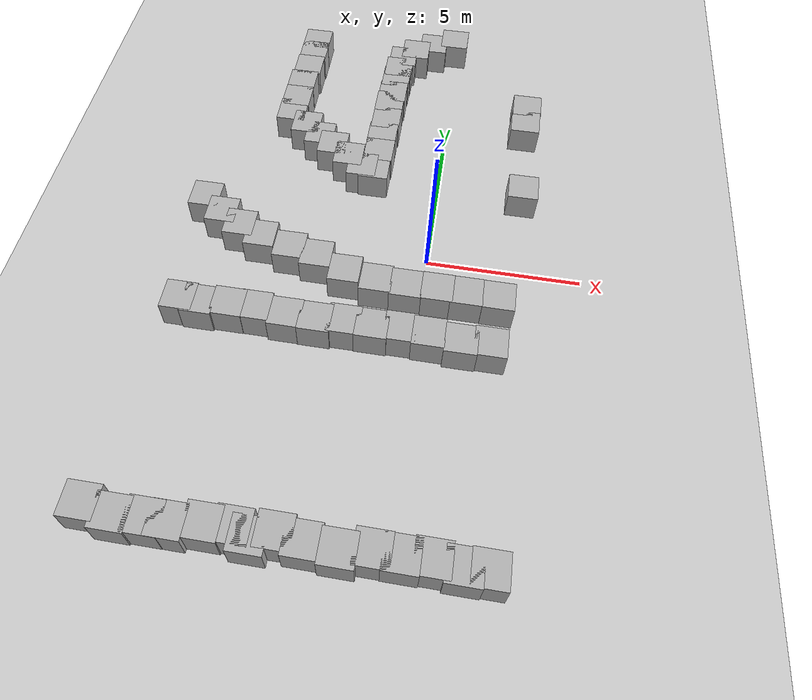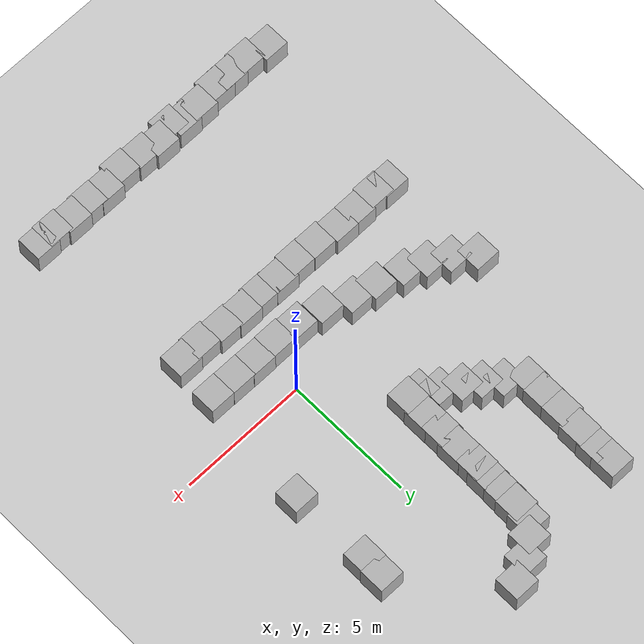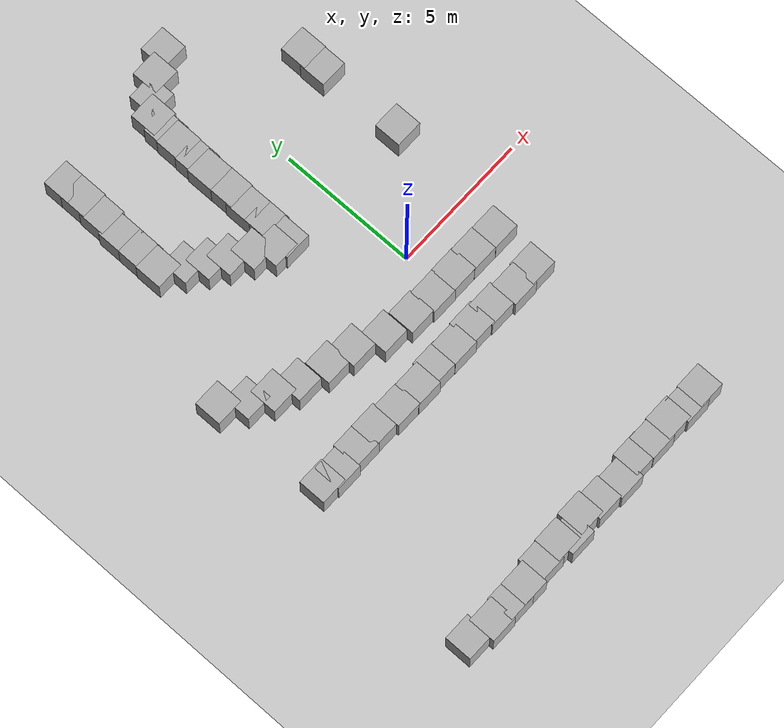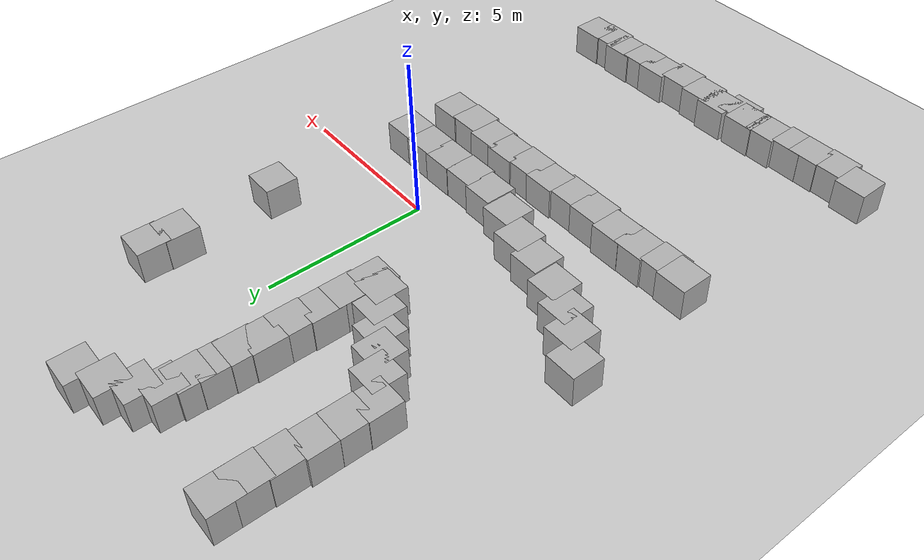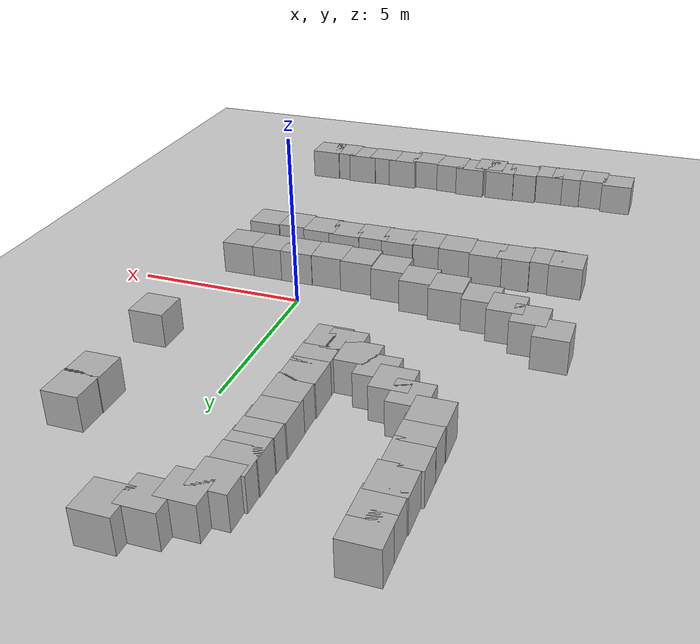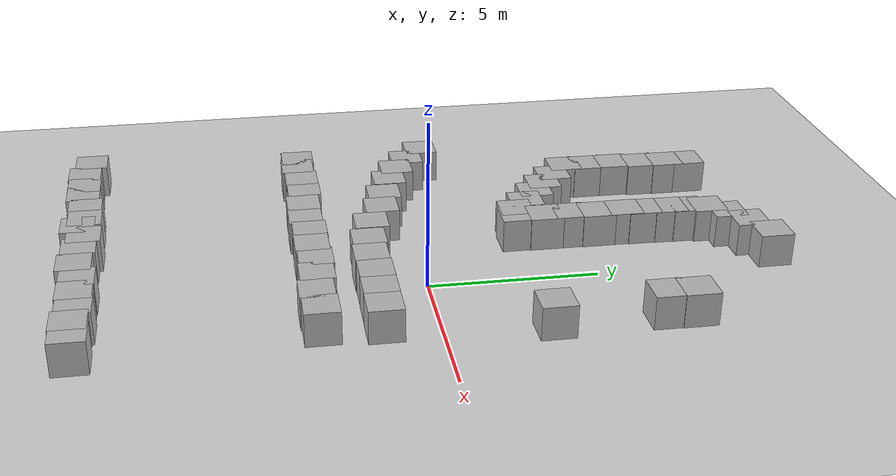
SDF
<sdf version="1.10">
 <world name="empty">
  <model name="ground_plane">
   <static>true</static>
   <link name="link">
    <collision name="collision">
     <geometry><plane><normal>0 0 1</normal><size>100 100</size></plane></geometry>
    </collision>
    <visual name="visual">
     <geometry><plane><normal>0 0 1</normal><size>100 100</size></plane></geometry>
     <material>
      <ambient>0.800000012 0.800000012 0.800000012 1</ambient>
      <diffuse>0.800000012 0.800000012 0.800000012 1</diffuse>
      <specular>0.800000012 0.800000012 0.800000012 1</specular>
     </material>
    </visual>
    <inertial>
     <mass>1</mass>
     <inertia><ixx>1</ixx><ixy>0</ixy><ixz>0</ixz><iyy>1</iyy><iyz>0</iyz><izz>1</izz></inertia>
    </inertial>
   </link>
  </model>
  <model name="box">
   <pose>-0.5103118022990687 -1.5572371090333519 0.5 0 0 0</pose>
   <link name="box_link">
    <inertial>
     <inertia><ixx>0.16666</ixx><ixy>0</ixy><ixz>0</ixz><iyy>0.16666</iyy><iyz>0</iyz><izz>0.16666</izz></inertia>
     <mass>1</mass>
    </inertial>
    <collision name="box_collision"><geometry><box><size>1 1 1</size></box></geometry></collision>
    <visual name="box_visual">
     <geometry><box><size>1 1 1</size></box></geometry>
     <material>
      <ambient>0.300000012 0.300000012 0.300000012 1</ambient>
      <diffuse>0.699999988 0.699999988 0.699999988 1</diffuse>
      <specular>1 1 1 1</specular>
     </material>
    </visual>
   </link>
   <static>false</static>
  </model>
  <model name="box_0">
   <pose>0.465324749371955 -1.5421919059583278 0.5 0 0 0</pose>
   <link name="box_link">
    <inertial>
     <inertia><ixx>0.16666</ixx><ixy>0</ixy><ixz>0</ixz><iyy>0.16666</iyy><iyz>0</iyz><izz>0.16666</izz></inertia>
     <mass>1</mass>
    </inertial>
    <collision name="box_collision"><geometry><box><size>1 1 1</size></box></geometry></collision>
    <visual name="box_visual">
     <geometry><box><size>1 1 1</size></box></geometry>
     <material>
      <ambient>0.300000012 0.300000012 0.300000012 1</ambient>
      <diffuse>0.699999988 0.699999988 0.699999988 1</diffuse>
      <specular>1 1 1 1</specular>
     </material>
    </visual>
   </link>
   <static>false</static>
  </model>
  <model name="box_1">
   <pose>1.3908001001700212 -1.550012316120148 0.5 0 0 0</pose>
   <link name="box_link">
    <inertial>
     <inertia><ixx>0.16666</ixx><ixy>0</ixy><ixz>0</ixz><iyy>0.16666</iyy><iyz>0</iyz><izz>0.16666</izz></inertia>
     <mass>1</mass>
    </inertial>
    <collision name="box_collision"><geometry><box><size>1 1 1</size></box></geometry></collision>
    <visual name="box_visual">
     <geometry><box><size>1 1 1</size></box></geometry>
     <material>
      <ambient>0.300000012 0.300000012 0.300000012 1</ambient>
      <diffuse>0.699999988 0.699999988 0.699999988 1</diffuse>
      <specular>1 1 1 1</specular>
     </material>
    </visual>
   </link>
   <static>false</static>
  </model>
  <model name="box_2">
   <pose>2.3780240748902814 -1.5593532998291624 0.5 0 0 0</pose>
   <link name="box_link">
    <inertial>
     <inertia><ixx>0.16666</ixx><ixy>0</ixy><ixz>0</ixz><iyy>0.16666</iyy><iyz>0</iyz><izz>0.16666</izz></inertia>
     <mass>1</mass>
    </inertial>
    <collision name="box_collision"><geometry><box><size>1 1 1</size></box></geometry></collision>
    <visual name="box_visual">
     <geometry><box><size>1 1 1</size></box></geometry>
     <material>
      <ambient>0.300000012 0.300000012 0.300000012 1</ambient>
      <diffuse>0.699999988 0.699999988 0.699999988 1</diffuse>
      <specular>1 1 1 1</specular>
     </material>
    </visual>
   </link>
   <static>false</static>
  </model>
  <model name="box_8">
   <pose>-1.4691949986557939 -1.5029652012372097 0.5 0 0 0</pose>
   <link name="box_link">
    <inertial>
     <inertia><ixx>0.16666</ixx><ixy>0</ixy><ixz>0</ixz><iyy>0.16666</iyy><iyz>0</iyz><izz>0.16666</izz></inertia>
     <mass>1</mass>
    </inertial>
    <collision name="box_collision"><geometry><box><size>1 1 1</size></box></geometry></collision>
    <visual name="box_visual">
     <geometry><box><size>1 1 1</size></box></geometry>
     <material>
      <ambient>0.300000012 0.300000012 0.300000012 1</ambient>
      <diffuse>0.699999988 0.699999988 0.699999988 1</diffuse>
      <specular>1 1 1 1</specular>
     </material>
    </visual>
   </link>
   <static>false</static>
  </model>
  <model name="box_9">
   <pose>-2.5003136378093527 -1.3086043863022381 0.5 0 0 0</pose>
   <link name="box_link">
    <inertial>
     <inertia><ixx>0.16666</ixx><ixy>0</ixy><ixz>0</ixz><iyy>0.16666</iyy><iyz>0</iyz><izz>0.16666</izz></inertia>
     <mass>1</mass>
    </inertial>
    <collision name="box_collision"><geometry><box><size>1 1 1</size></box></geometry></collision>
    <visual name="box_visual">
     <geometry><box><size>1 1 1</size></box></geometry>
     <material>
      <ambient>0.300000012 0.300000012 0.300000012 1</ambient>
      <diffuse>0.699999988 0.699999988 0.699999988 1</diffuse>
      <specular>1 1 1 1</specular>
     </material>
    </visual>
   </link>
   <static>false</static>
  </model>
  <model name="box_10">
   <pose>-3.4968930083323273 -0.8743732851774022 0.5 0 0 0</pose>
   <link name="box_link">
    <inertial>
     <inertia><ixx>0.16666</ixx><ixy>0</ixy><ixz>0</ixz><iyy>0.16666</iyy><iyz>0</iyz><izz>0.16666</izz></inertia>
     <mass>1</mass>
    </inertial>
    <collision name="box_collision"><geometry><box><size>1 1 1</size></box></geometry></collision>
    <visual name="box_visual">
     <geometry><box><size>1 1 1</size></box></geometry>
     <material>
      <ambient>0.300000012 0.300000012 0.300000012 1</ambient>
      <diffuse>0.699999988 0.699999988 0.699999988 1</diffuse>
      <specular>1 1 1 1</specular>
     </material>
    </visual>
   </link>
   <static>false</static>
  </model>
  <model name="box_11">
   <pose>-4.4232375011744631 -0.67955977234431431 0.5 0 0 0</pose>
   <link name="box_link">
    <inertial>
     <inertia><ixx>0.16666</ixx><ixy>0</ixy><ixz>0</ixz><iyy>0.16666</iyy><iyz>0</iyz><izz>0.16666</izz></inertia>
     <mass>1</mass>
    </inertial>
    <collision name="box_collision"><geometry><box><size>1 1 1</size></box></geometry></collision>
    <visual name="box_visual">
     <geometry><box><size>1 1 1</size></box></geometry>
     <material>
      <ambient>0.300000012 0.300000012 0.300000012 1</ambient>
      <diffuse>0.699999988 0.699999988 0.699999988 1</diffuse>
      <specular>1 1 1 1</specular>
     </material>
    </visual>
   </link>
   <static>false</static>
  </model>
  <model name="box_12">
   <pose>-5.4517876371504554 -0.38332490231765015 0.5 0 0 0</pose>
   <link name="box_link">
    <inertial>
     <inertia><ixx>0.16666</ixx><ixy>0</ixy><ixz>0</ixz><iyy>0.16666</iyy><iyz>0</iyz><izz>0.16666</izz></inertia>
     <mass>1</mass>
    </inertial>
    <collision name="box_collision"><geometry><box><size>1 1 1</size></box></geometry></collision>
    <visual name="box_visual">
     <geometry><box><size>1 1 1</size></box></geometry>
     <material>
      <ambient>0.300000012 0.300000012 0.300000012 1</ambient>
      <diffuse>0.699999988 0.699999988 0.699999988 1</diffuse>
      <specular>1 1 1 1</specular>
     </material>
    </visual>
   </link>
   <static>false</static>
  </model>
  <model name="box_13">
   <pose>-6.2373800277709961 -0.051265798509120941 0.5 0 0 0</pose>
   <link name="box_link">
    <inertial>
     <inertia><ixx>0.16666</ixx><ixy>0</ixy><ixz>0</ixz><iyy>0.16666</iyy><iyz>0</iyz><izz>0.16666</izz></inertia>
     <mass>1</mass>
    </inertial>
    <collision name="box_collision"><geometry><box><size>1 1 1</size></box></geometry></collision>
    <visual name="box_visual">
     <geometry><box><size>1 1 1</size></box></geometry>
     <material>
      <ambient>0.300000012 0.300000012 0.300000012 1</ambient>
      <diffuse>0.699999988 0.699999988 0.699999988 1</diffuse>
      <specular>1 1 1 1</specular>
     </material>
    </visual>
   </link>
   <static>false</static>
  </model>
  <model name="box_14">
   <pose>-6.9554026283552153 0.38368040429650563 0.5 0 0 0</pose>
   <link name="box_link">
    <inertial>
     <inertia><ixx>0.16666</ixx><ixy>0</ixy><ixz>0</ixz><iyy>0.16666</iyy><iyz>0</iyz><izz>0.16666</izz></inertia>
     <mass>1</mass>
    </inertial>
    <collision name="box_collision"><geometry><box><size>1 1 1</size></box></geometry></collision>
    <visual name="box_visual">
     <geometry><box><size>1 1 1</size></box></geometry>
     <material>
      <ambient>0.300000012 0.300000012 0.300000012 1</ambient>
      <diffuse>0.699999988 0.699999988 0.699999988 1</diffuse>
      <specular>1 1 1 1</specular>
     </material>
    </visual>
   </link>
   <static>false</static>
  </model>
  <model name="box_15">
   <pose>-7.6692439723208015 0.95319792340135789 0.5 0 0 0</pose>
   <link name="box_link">
    <inertial>
     <inertia><ixx>0.16666</ixx><ixy>0</ixy><ixz>0</ixz><iyy>0.16666</iyy><iyz>0</iyz><izz>0.16666</izz></inertia>
     <mass>1</mass>
    </inertial>
    <collision name="box_collision"><geometry><box><size>1 1 1</size></box></geometry></collision>
    <visual name="box_visual">
     <geometry><box><size>1 1 1</size></box></geometry>
     <material>
      <ambient>0.300000012 0.300000012 0.300000012 1</ambient>
      <diffuse>0.699999988 0.699999988 0.699999988 1</diffuse>
      <specular>1 1 1 1</specular>
     </material>
    </visual>
   </link>
   <static>false</static>
  </model>
  <model name="box_19_1">
   <pose>2.8898080161827115 2.9913672453019284 0.5 0 0 0</pose>
   <link name="box_link">
    <inertial>
     <inertia><ixx>0.16666</ixx><ixy>0</ixy><ixz>0</ixz><iyy>0.16666</iyy><iyz>0</iyz><izz>0.16666</izz></inertia>
     <mass>1</mass>
    </inertial>
    <collision name="box_collision"><geometry><box><size>1 1 1</size></box></geometry></collision>
    <visual name="box_visual">
     <geometry><box><size>1 1 1</size></box></geometry>
     <material>
      <ambient>0.300000012 0.300000012 0.300000012 1</ambient>
      <diffuse>0.699999988 0.699999988 0.699999988 1</diffuse>
      <specular>1 1 1 1</specular>
     </material>
    </visual>
   </link>
   <static>false</static>
  </model>
  <model name="box_7_4">
   <pose>2.8049931583423278 6.1290741332245302 0.5 0 0 0</pose>
   <link name="box_link">
    <inertial>
     <inertia><ixx>0.16666</ixx><ixy>0</ixy><ixz>0</ixz><iyy>0.16666</iyy><iyz>0</iyz><izz>0.16666</izz></inertia>
     <mass>1</mass>
    </inertial>
    <collision name="box_collision"><geometry><box><size>1 1 1</size></box></geometry></collision>
    <visual name="box_visual">
     <geometry><box><size>1 1 1</size></box></geometry>
     <material>
      <ambient>0.300000012 0.300000012 0.300000012 1</ambient>
      <diffuse>0.699999988 0.699999988 0.699999988 1</diffuse>
      <specular>1 1 1 1</specular>
     </material>
    </visual>
   </link>
   <static>false</static>
  </model>
  <model name="box_7_5">
   <pose>2.8257385187786537 6.9584155599908932 0.5 0 0 0</pose>
   <link name="box_link">
    <inertial>
     <inertia><ixx>0.16666</ixx><ixy>0</ixy><ixz>0</ixz><iyy>0.16666</iyy><iyz>0</iyz><izz>0.16666</izz></inertia>
     <mass>1</mass>
    </inertial>
    <collision name="box_collision"><geometry><box><size>1 1 1</size></box></geometry></collision>
    <visual name="box_visual">
     <geometry><box><size>1 1 1</size></box></geometry>
     <material>
      <ambient>0.300000012 0.300000012 0.300000012 1</ambient>
      <diffuse>0.699999988 0.699999988 0.699999988 1</diffuse>
      <specular>1 1 1 1</specular>
     </material>
    </visual>
   </link>
   <static>false</static>
  </model>
  <model name="box_7_6">
   <pose>-2.689199144929955 3.1326155944008862 0.5 0 0 0</pose>
   <link name="box_link">
    <inertial>
     <inertia><ixx>0.16666</ixx><ixy>0</ixy><ixz>0</ixz><iyy>0.16666</iyy><iyz>0</iyz><izz>0.16666</izz></inertia>
     <mass>1</mass>
    </inertial>
    <collision name="box_collision"><geometry><box><size>1 1 1</size></box></geometry></collision>
    <visual name="box_visual">
     <geometry><box><size>1 1 1</size></box></geometry>
     <material>
      <ambient>0.300000012 0.300000012 0.300000012 1</ambient>
      <diffuse>0.699999988 0.699999988 0.699999988 1</diffuse>
      <specular>1 1 1 1</specular>
     </material>
    </visual>
   </link>
   <static>false</static>
  </model>
  <model name="box_7_7">
   <pose>-3.2342162004722481 3.5629760571669751 0.5 0 0 0</pose>
   <link name="box_link">
    <inertial>
     <inertia><ixx>0.16666</ixx><ixy>0</ixy><ixz>0</ixz><iyy>0.16666</iyy><iyz>0</iyz><izz>0.16666</izz></inertia>
     <mass>1</mass>
    </inertial>
    <collision name="box_collision"><geometry><box><size>1 1 1</size></box></geometry></collision>
    <visual name="box_visual">
     <geometry><box><size>1 1 1</size></box></geometry>
     <material>
      <ambient>0.300000012 0.300000012 0.300000012 1</ambient>
      <diffuse>0.699999988 0.699999988 0.699999988 1</diffuse>
      <specular>1 1 1 1</specular>
     </material>
    </visual>
   </link>
   <static>false</static>
  </model>
  <model name="box_7_8">
   <pose>-3.8811139416638776 3.9923740787203537 0.5 0 0 0</pose>
   <link name="box_link">
    <inertial>
     <inertia><ixx>0.16666</ixx><ixy>0</ixy><ixz>0</ixz><iyy>0.16666</iyy><iyz>0</iyz><izz>0.16666</izz></inertia>
     <mass>1</mass>
    </inertial>
    <collision name="box_collision"><geometry><box><size>1 1 1</size></box></geometry></collision>
    <visual name="box_visual">
     <geometry><box><size>1 1 1</size></box></geometry>
     <material>
      <ambient>0.300000012 0.300000012 0.300000012 1</ambient>
      <diffuse>0.699999988 0.699999988 0.699999988 1</diffuse>
      <specular>1 1 1 1</specular>
     </material>
    </visual>
   </link>
   <static>false</static>
  </model>
  <model name="box_7_9">
   <pose>-4.4240135839997397 4.3878270713158063 0.5 0 0 0</pose>
   <link name="box_link">
    <inertial>
     <inertia><ixx>0.16666</ixx><ixy>0</ixy><ixz>0</ixz><iyy>0.16666</iyy><iyz>0</iyz><izz>0.16666</izz></inertia>
     <mass>1</mass>
    </inertial>
    <collision name="box_collision"><geometry><box><size>1 1 1</size></box></geometry></collision>
    <visual name="box_visual">
     <geometry><box><size>1 1 1</size></box></geometry>
     <material>
      <ambient>0.300000012 0.300000012 0.300000012 1</ambient>
      <diffuse>0.699999988 0.699999988 0.699999988 1</diffuse>
      <specular>1 1 1 1</specular>
     </material>
    </visual>
   </link>
   <static>false</static>
  </model>
  <model name="box_7_10">
   <pose>-5.0003705507495102 4.8492179712719894 0.5 0 0 0</pose>
   <link name="box_link">
    <inertial>
     <inertia><ixx>0.16666</ixx><ixy>0</ixy><ixz>0</ixz><iyy>0.16666</iyy><iyz>0</iyz><izz>0.16666</izz></inertia>
     <mass>1</mass>
    </inertial>
    <collision name="box_collision"><geometry><box><size>1 1 1</size></box></geometry></collision>
    <visual name="box_visual">
     <geometry><box><size>1 1 1</size></box></geometry>
     <material>
      <ambient>0.300000012 0.300000012 0.300000012 1</ambient>
      <diffuse>0.699999988 0.699999988 0.699999988 1</diffuse>
      <specular>1 1 1 1</specular>
     </material>
    </visual>
   </link>
   <static>false</static>
  </model>
  <model name="box_7_11">
   <pose>-5.6428586157867642 5.3753450057465422 0.5 0 0 0</pose>
   <link name="box_link">
    <inertial>
     <inertia><ixx>0.16666</ixx><ixy>0</ixy><ixz>0</ixz><iyy>0.16666</iyy><iyz>0</iyz><izz>0.16666</izz></inertia>
     <mass>1</mass>
    </inertial>
    <collision name="box_collision"><geometry><box><size>1 1 1</size></box></geometry></collision>
    <visual name="box_visual">
     <geometry><box><size>1 1 1</size></box></geometry>
     <material>
      <ambient>0.300000012 0.300000012 0.300000012 1</ambient>
      <diffuse>0.699999988 0.699999988 0.699999988 1</diffuse>
      <specular>1 1 1 1</specular>
     </material>
    </visual>
   </link>
   <static>false</static>
  </model>
  <model name="box_7_13">
   <pose>-2.247492571055612 3.0708243085432922 0.5 0 0 0</pose>
   <link name="box_link">
    <inertial>
     <inertia><ixx>0.16666</ixx><ixy>0</ixy><ixz>0</ixz><iyy>0.16666</iyy><iyz>0</iyz><izz>0.16666</izz></inertia>
     <mass>1</mass>
    </inertial>
    <collision name="box_collision"><geometry><box><size>1 1 1</size></box></geometry></collision>
    <visual name="box_visual">
     <geometry><box><size>1 1 1</size></box></geometry>
     <material>
      <ambient>0.300000012 0.300000012 0.300000012 1</ambient>
      <diffuse>0.699999988 0.699999988 0.699999988 1</diffuse>
      <specular>1 1 1 1</specular>
     </material>
    </visual>
   </link>
   <static>false</static>
  </model>
  <model name="box_7_14">
   <pose>-2.2174684531073106 3.9099137922750673 0.5 0 0 0</pose>
   <link name="box_link">
    <inertial>
     <inertia><ixx>0.16666</ixx><ixy>0</ixy><ixz>0</ixz><iyy>0.16666</iyy><iyz>0</iyz><izz>0.16666</izz></inertia>
     <mass>1</mass>
    </inertial>
    <collision name="box_collision"><geometry><box><size>1 1 1</size></box></geometry></collision>
    <visual name="box_visual">
     <geometry><box><size>1 1 1</size></box></geometry>
     <material>
      <ambient>0.300000012 0.300000012 0.300000012 1</ambient>
      <diffuse>0.699999988 0.699999988 0.699999988 1</diffuse>
      <specular>1 1 1 1</specular>
     </material>
    </visual>
   </link>
   <static>false</static>
  </model>
  <model name="box_7_15">
   <pose>-2.2212075273248009 4.7112945095395569 0.5 0 0 0</pose>
   <link name="box_link">
    <inertial>
     <inertia><ixx>0.16666</ixx><ixy>0</ixy><ixz>0</ixz><iyy>0.16666</iyy><iyz>0</iyz><izz>0.16666</izz></inertia>
     <mass>1</mass>
    </inertial>
    <collision name="box_collision"><geometry><box><size>1 1 1</size></box></geometry></collision>
    <visual name="box_visual">
     <geometry><box><size>1 1 1</size></box></geometry>
     <material>
      <ambient>0.300000012 0.300000012 0.300000012 1</ambient>
      <diffuse>0.699999988 0.699999988 0.699999988 1</diffuse>
      <specular>1 1 1 1</specular>
     </material>
    </visual>
   </link>
   <static>false</static>
  </model>
  <model name="box_7_16">
   <pose>-2.1911942184538011 5.509672067998193 0.5 0 0 0</pose>
   <link name="box_link">
    <inertial>
     <inertia><ixx>0.16666</ixx><ixy>0</ixy><ixz>0</ixz><iyy>0.16666</iyy><iyz>0</iyz><izz>0.16666</izz></inertia>
     <mass>1</mass>
    </inertial>
    <collision name="box_collision"><geometry><box><size>1 1 1</size></box></geometry></collision>
    <visual name="box_visual">
     <geometry><box><size>1 1 1</size></box></geometry>
     <material>
      <ambient>0.300000012 0.300000012 0.300000012 1</ambient>
      <diffuse>0.699999988 0.699999988 0.699999988 1</diffuse>
      <specular>1 1 1 1</specular>
     </material>
    </visual>
   </link>
   <static>false</static>
  </model>
  <model name="box_7_17">
   <pose>-2.1961464871621459 6.3748183856237741 0.5 0 0 0</pose>
   <link name="box_link">
    <inertial>
     <inertia><ixx>0.16666</ixx><ixy>0</ixy><ixz>0</ixz><iyy>0.16666</iyy><iyz>0</iyz><izz>0.16666</izz></inertia>
     <mass>1</mass>
    </inertial>
    <collision name="box_collision"><geometry><box><size>1 1 1</size></box></geometry></collision>
    <visual name="box_visual">
     <geometry><box><size>1 1 1</size></box></geometry>
     <material>
      <ambient>0.300000012 0.300000012 0.300000012 1</ambient>
      <diffuse>0.699999988 0.699999988 0.699999988 1</diffuse>
      <specular>1 1 1 1</specular>
     </material>
    </visual>
   </link>
   <static>false</static>
  </model>
  <model name="box_7_18">
   <pose>-2.1655441861876401 6.9378981576131942 0.5 0 0 0</pose>
   <link name="box_link">
    <inertial>
     <inertia><ixx>0.16666</ixx><ixy>0</ixy><ixz>0</ixz><iyy>0.16666</iyy><iyz>0</iyz><izz>0.16666</izz></inertia>
     <mass>1</mass>
    </inertial>
    <collision name="box_collision"><geometry><box><size>1 1 1</size></box></geometry></collision>
    <visual name="box_visual">
     <geometry><box><size>1 1 1</size></box></geometry>
     <material>
      <ambient>0.300000012 0.300000012 0.300000012 1</ambient>
      <diffuse>0.699999988 0.699999988 0.699999988 1</diffuse>
      <specular>1 1 1 1</specular>
     </material>
    </visual>
   </link>
   <static>false</static>
  </model>
  <model name="box_7_12">
   <pose>-5.6238256660328183 6.139233918680401 0.5 0 0 0</pose>
   <link name="box_link">
    <inertial>
     <inertia><ixx>0.16666</ixx><ixy>0</ixy><ixz>0</ixz><iyy>0.16666</iyy><iyz>0</iyz><izz>0.16666</izz></inertia>
     <mass>1</mass>
    </inertial>
    <collision name="box_collision"><geometry><box><size>1 1 1</size></box></geometry></collision>
    <visual name="box_visual">
     <geometry><box><size>1 1 1</size></box></geometry>
     <material>
      <ambient>0.300000012 0.300000012 0.300000012 1</ambient>
      <diffuse>0.699999988 0.699999988 0.699999988 1</diffuse>
      <specular>1 1 1 1</specular>
     </material>
    </visual>
   </link>
   <static>false</static>
  </model>
  <model name="box_7_24">
   <pose>-5.6183297165655244 6.9989075408099204 0.5 0 0 0</pose>
   <link name="box_link">
    <inertial>
     <inertia><ixx>0.16666</ixx><ixy>0</ixy><ixz>0</ixz><iyy>0.16666</iyy><iyz>0</iyz><izz>0.16666</izz></inertia>
     <mass>1</mass>
    </inertial>
    <collision name="box_collision"><geometry><box><size>1 1 1</size></box></geometry></collision>
    <visual name="box_visual">
     <geometry><box><size>1 1 1</size></box></geometry>
     <material>
      <ambient>0.300000012 0.300000012 0.300000012 1</ambient>
      <diffuse>0.699999988 0.699999988 0.699999988 1</diffuse>
      <specular>1 1 1 1</specular>
     </material>
    </visual>
   </link>
   <static>false</static>
  </model>
  <model name="box_7_25">
   <pose>-5.5452974438639515 7.8973598493308446 0.5 0 0 0</pose>
   <link name="box_link">
    <inertial>
     <inertia><ixx>0.16666</ixx><ixy>0</ixy><ixz>0</ixz><iyy>0.16666</iyy><iyz>0</iyz><izz>0.16666</izz></inertia>
     <mass>1</mass>
    </inertial>
    <collision name="box_collision"><geometry><box><size>1 1 1</size></box></geometry></collision>
    <visual name="box_visual">
     <geometry><box><size>1 1 1</size></box></geometry>
     <material>
      <ambient>0.300000012 0.300000012 0.300000012 1</ambient>
      <diffuse>0.699999988 0.699999988 0.699999988 1</diffuse>
      <specular>1 1 1 1</specular>
     </material>
    </visual>
   </link>
   <static>false</static>
  </model>
  <model name="box_7_28">
   <pose>-5.5166667334966446 8.7272410631868169 0.5 0 0 0</pose>
   <link name="box_link">
    <inertial>
     <inertia><ixx>0.16666</ixx><ixy>0</ixy><ixz>0</ixz><iyy>0.16666</iyy><iyz>0</iyz><izz>0.16666</izz></inertia>
     <mass>1</mass>
    </inertial>
    <collision name="box_collision"><geometry><box><size>1 1 1</size></box></geometry></collision>
    <visual name="box_visual">
     <geometry><box><size>1 1 1</size></box></geometry>
     <material>
      <ambient>0.300000012 0.300000012 0.300000012 1</ambient>
      <diffuse>0.699999988 0.699999988 0.699999988 1</diffuse>
      <specular>1 1 1 1</specular>
     </material>
    </visual>
   </link>
   <static>false</static>
  </model>
  <model name="box_7_32">
   <pose>-5.5160406983343808 9.4319575808010576 0.5 0 0 0</pose>
   <link name="box_link">
    <inertial>
     <inertia><ixx>0.16666</ixx><ixy>0</ixy><ixz>0</ixz><iyy>0.16666</iyy><iyz>0</iyz><izz>0.16666</izz></inertia>
     <mass>1</mass>
    </inertial>
    <collision name="box_collision"><geometry><box><size>1 1 1</size></box></geometry></collision>
    <visual name="box_visual">
     <geometry><box><size>1 1 1</size></box></geometry>
     <material>
      <ambient>0.300000012 0.300000012 0.300000012 1</ambient>
      <diffuse>0.699999988 0.699999988 0.699999988 1</diffuse>
      <specular>1 1 1 1</specular>
     </material>
    </visual>
   </link>
   <static>false</static>
  </model>
  <model name="box_7_52">
   <pose>-0.1640075415727269 10.270951943889415 0.5 0 0 0</pose>
   <link name="box_link">
    <inertial>
     <inertia><ixx>0.16666</ixx><ixy>0</ixy><ixz>0</ixz><iyy>0.16666</iyy><iyz>0</iyz><izz>0.16666</izz></inertia>
     <mass>1</mass>
    </inertial>
    <collision name="box_collision"><geometry><box><size>1 1 1</size></box></geometry></collision>
    <visual name="box_visual">
     <geometry><box><size>1 1 1</size></box></geometry>
     <material>
      <ambient>0.300000012 0.300000012 0.300000012 1</ambient>
      <diffuse>0.699999988 0.699999988 0.699999988 1</diffuse>
      <specular>1 1 1 1</specular>
     </material>
    </visual>
   </link>
   <static>false</static>
  </model>
  <model name="box_7_53">
   <pose>-0.95454141975403151 9.8797563652505449 0.5 0 0 0</pose>
   <link name="box_link">
    <inertial>
     <inertia><ixx>0.16666</ixx><ixy>0</ixy><ixz>0</ixz><iyy>0.16666</iyy><iyz>0</iyz><izz>0.16666</izz></inertia>
     <mass>1</mass>
    </inertial>
    <collision name="box_collision"><geometry><box><size>1 1 1</size></box></geometry></collision>
    <visual name="box_visual">
     <geometry><box><size>1 1 1</size></box></geometry>
     <material>
      <ambient>0.300000012 0.300000012 0.300000012 1</ambient>
      <diffuse>0.699999988 0.699999988 0.699999988 1</diffuse>
      <specular>1 1 1 1</specular>
     </material>
    </visual>
   </link>
   <static>false</static>
  </model>
  <model name="box_7_54">
   <pose>-1.5979977493690229 9.4258053471603169 0.5 0 0 0</pose>
   <link name="box_link">
    <inertial>
     <inertia><ixx>0.16666</ixx><ixy>0</ixy><ixz>0</ixz><iyy>0.16666</iyy><iyz>0</iyz><izz>0.16666</izz></inertia>
     <mass>1</mass>
    </inertial>
    <collision name="box_collision"><geometry><box><size>1 1 1</size></box></geometry></collision>
    <visual name="box_visual">
     <geometry><box><size>1 1 1</size></box></geometry>
     <material>
      <ambient>0.300000012 0.300000012 0.300000012 1</ambient>
      <diffuse>0.699999988 0.699999988 0.699999988 1</diffuse>
      <specular>1 1 1 1</specular>
     </material>
    </visual>
   </link>
   <static>false</static>
  </model>
  <model name="box_7_55">
   <pose>-2.0366075326427486 8.9445663822618222 0.5 0 0 0</pose>
   <link name="box_link">
    <inertial>
     <inertia><ixx>0.16666</ixx><ixy>0</ixy><ixz>0</ixz><iyy>0.16666</iyy><iyz>0</iyz><izz>0.16666</izz></inertia>
     <mass>1</mass>
    </inertial>
    <collision name="box_collision"><geometry><box><size>1 1 1</size></box></geometry></collision>
    <visual name="box_visual">
     <geometry><box><size>1 1 1</size></box></geometry>
     <material>
      <ambient>0.300000012 0.300000012 0.300000012 1</ambient>
      <diffuse>0.699999988 0.699999988 0.699999988 1</diffuse>
      <specular>1 1 1 1</specular>
     </material>
    </visual>
   </link>
   <static>false</static>
  </model>
  <model name="box_7_56">
   <pose>-2.119408750549006 8.3128059263454119 0.5 0 0 0</pose>
   <link name="box_link">
    <inertial>
     <inertia><ixx>0.16666</ixx><ixy>0</ixy><ixz>0</ixz><iyy>0.16666</iyy><iyz>0</iyz><izz>0.16666</izz></inertia>
     <mass>1</mass>
    </inertial>
    <collision name="box_collision"><geometry><box><size>1 1 1</size></box></geometry></collision>
    <visual name="box_visual">
     <geometry><box><size>1 1 1</size></box></geometry>
     <material>
      <ambient>0.300000012 0.300000012 0.300000012 1</ambient>
      <diffuse>0.699999988 0.699999988 0.699999988 1</diffuse>
      <specular>1 1 1 1</specular>
     </material>
    </visual>
   </link>
   <static>false</static>
  </model>
  <model name="box_7_57">
   <pose>-2.1432211689885223 7.7480663476487086 0.5 0 0 0</pose>
   <link name="box_link">
    <inertial>
     <inertia><ixx>0.16666</ixx><ixy>0</ixy><ixz>0</ixz><iyy>0.16666</iyy><iyz>0</iyz><izz>0.16666</izz></inertia>
     <mass>1</mass>
    </inertial>
    <collision name="box_collision"><geometry><box><size>1 1 1</size></box></geometry></collision>
    <visual name="box_visual">
     <geometry><box><size>1 1 1</size></box></geometry>
     <material>
      <ambient>0.300000012 0.300000012 0.300000012 1</ambient>
      <diffuse>0.699999988 0.699999988 0.699999988 1</diffuse>
      <specular>1 1 1 1</specular>
     </material>
    </visual>
   </link>
   <static>false</static>
  </model>
  <model name="box_7_265">
   <pose>-8.0566517273611815 -9.7625969231317171 0.5 0 0 0</pose>
   <link name="box_link">
    <inertial>
     <inertia><ixx>0.16666</ixx><ixy>0</ixy><ixz>0</ixz><iyy>0.16666</iyy><iyz>0</iyz><izz>0.16666</izz></inertia>
     <mass>1</mass>
    </inertial>
    <collision name="box_collision"><geometry><box><size>1 1 1</size></box></geometry></collision>
    <visual name="box_visual">
     <geometry><box><size>1 1 1</size></box></geometry>
     <material>
      <ambient>0.300000012 0.300000012 0.300000012 1</ambient>
      <diffuse>0.699999988 0.699999988 0.699999988 1</diffuse>
      <specular>1 1 1 1</specular>
     </material>
    </visual>
   </link>
   <static>false</static>
  </model>
  <model name="box_7_266">
   <pose>-7.3818795012114071 -3.1413122060789016 0.5 0 0 0</pose>
   <link name="box_link">
    <inertial>
     <inertia><ixx>0.16666</ixx><ixy>0</ixy><ixz>0</ixz><iyy>0.16666</iyy><iyz>0</iyz><izz>0.16666</izz></inertia>
     <mass>1</mass>
    </inertial>
    <collision name="box_collision"><geometry><box><size>1 1 1</size></box></geometry></collision>
    <visual name="box_visual">
     <geometry><box><size>1 1 1</size></box></geometry>
     <material>
      <ambient>0.300000012 0.300000012 0.300000012 1</ambient>
      <diffuse>0.699999988 0.699999988 0.699999988 1</diffuse>
      <specular>1 1 1 1</specular>
     </material>
    </visual>
   </link>
   <static>false</static>
  </model>
  <model name="box_7_267">
   <pose>-6.7458425478760287 -3.184090195596216 0.5 0 0 0</pose>
   <link name="box_link">
    <inertial>
     <inertia><ixx>0.16666</ixx><ixy>0</ixy><ixz>0</ixz><iyy>0.16666</iyy><iyz>0</iyz><izz>0.16666</izz></inertia>
     <mass>1</mass>
    </inertial>
    <collision name="box_collision"><geometry><box><size>1 1 1</size></box></geometry></collision>
    <visual name="box_visual">
     <geometry><box><size>1 1 1</size></box></geometry>
     <material>
      <ambient>0.300000012 0.300000012 0.300000012 1</ambient>
      <diffuse>0.699999988 0.699999988 0.699999988 1</diffuse>
      <specular>1 1 1 1</specular>
     </material>
    </visual>
   </link>
   <static>false</static>
  </model>
  <model name="box_7_268">
   <pose>-5.8193823708150809 -3.1243620616047361 0.5 0 0 0</pose>
   <link name="box_link">
    <inertial>
     <inertia><ixx>0.16666</ixx><ixy>0</ixy><ixz>0</ixz><iyy>0.16666</iyy><iyz>0</iyz><izz>0.16666</izz></inertia>
     <mass>1</mass>
    </inertial>
    <collision name="box_collision"><geometry><box><size>1 1 1</size></box></geometry></collision>
    <visual name="box_visual">
     <geometry><box><size>1 1 1</size></box></geometry>
     <material>
      <ambient>0.300000012 0.300000012 0.300000012 1</ambient>
      <diffuse>0.699999988 0.699999988 0.699999988 1</diffuse>
      <specular>1 1 1 1</specular>
     </material>
    </visual>
   </link>
   <static>false</static>
  </model>
  <model name="box_7_269">
   <pose>-4.9865195790542121 -3.1153947225578174 0.5 0 0 0</pose>
   <link name="box_link">
    <inertial>
     <inertia><ixx>0.16666</ixx><ixy>0</ixy><ixz>0</ixz><iyy>0.16666</iyy><iyz>0</iyz><izz>0.16666</izz></inertia>
     <mass>1</mass>
    </inertial>
    <collision name="box_collision"><geometry><box><size>1 1 1</size></box></geometry></collision>
    <visual name="box_visual">
     <geometry><box><size>1 1 1</size></box></geometry>
     <material>
      <ambient>0.300000012 0.300000012 0.300000012 1</ambient>
      <diffuse>0.699999988 0.699999988 0.699999988 1</diffuse>
      <specular>1 1 1 1</specular>
     </material>
    </visual>
   </link>
   <static>false</static>
  </model>
  <model name="box_7_270">
   <pose>-4.0073414671621448 -3.2041298455910283 0.5 0 0 0</pose>
   <link name="box_link">
    <inertial>
     <inertia><ixx>0.16666</ixx><ixy>0</ixy><ixz>0</ixz><iyy>0.16666</iyy><iyz>0</iyz><izz>0.16666</izz></inertia>
     <mass>1</mass>
    </inertial>
    <collision name="box_collision"><geometry><box><size>1 1 1</size></box></geometry></collision>
    <visual name="box_visual">
     <geometry><box><size>1 1 1</size></box></geometry>
     <material>
      <ambient>0.300000012 0.300000012 0.300000012 1</ambient>
      <diffuse>0.699999988 0.699999988 0.699999988 1</diffuse>
      <specular>1 1 1 1</specular>
     </material>
    </visual>
   </link>
   <static>false</static>
  </model>
  <model name="box_7_271">
   <pose>-3.0771616902463701 -3.2191438599627356 0.5 0 0 0</pose>
   <link name="box_link">
    <inertial>
     <inertia><ixx>0.16666</ixx><ixy>0</ixy><ixz>0</ixz><iyy>0.16666</iyy><iyz>0</iyz><izz>0.16666</izz></inertia>
     <mass>1</mass>
    </inertial>
    <collision name="box_collision"><geometry><box><size>1 1 1</size></box></geometry></collision>
    <visual name="box_visual">
     <geometry><box><size>1 1 1</size></box></geometry>
     <material>
      <ambient>0.300000012 0.300000012 0.300000012 1</ambient>
      <diffuse>0.699999988 0.699999988 0.699999988 1</diffuse>
      <specular>1 1 1 1</specular>
     </material>
    </visual>
   </link>
   <static>false</static>
  </model>
  <model name="box_7_272">
   <pose>-2.1992059312064045 -3.159371251491061 0.5 0 0 0</pose>
   <link name="box_link">
    <inertial>
     <inertia><ixx>0.16666</ixx><ixy>0</ixy><ixz>0</ixz><iyy>0.16666</iyy><iyz>0</iyz><izz>0.16666</izz></inertia>
     <mass>1</mass>
    </inertial>
    <collision name="box_collision"><geometry><box><size>1 1 1</size></box></geometry></collision>
    <visual name="box_visual">
     <geometry><box><size>1 1 1</size></box></geometry>
     <material>
      <ambient>0.300000012 0.300000012 0.300000012 1</ambient>
      <diffuse>0.699999988 0.699999988 0.699999988 1</diffuse>
      <specular>1 1 1 1</specular>
     </material>
    </visual>
   </link>
   <static>false</static>
  </model>
  <model name="box_7_273">
   <pose>-1.3414980649565686 -3.1752486333728438 0.5 0 0 0</pose>
   <link name="box_link">
    <inertial>
     <inertia><ixx>0.16666</ixx><ixy>0</ixy><ixz>0</ixz><iyy>0.16666</iyy><iyz>0</iyz><izz>0.16666</izz></inertia>
     <mass>1</mass>
    </inertial>
    <collision name="box_collision"><geometry><box><size>1 1 1</size></box></geometry></collision>
    <visual name="box_visual">
     <geometry><box><size>1 1 1</size></box></geometry>
     <material>
      <ambient>0.300000012 0.300000012 0.300000012 1</ambient>
      <diffuse>0.699999988 0.699999988 0.699999988 1</diffuse>
      <specular>1 1 1 1</specular>
     </material>
    </visual>
   </link>
   <static>false</static>
  </model>
  <model name="box_7_274">
   <pose>-0.46315413408812134 -3.1406675306666507 0.5 0 0 0</pose>
   <link name="box_link">
    <inertial>
     <inertia><ixx>0.16666</ixx><ixy>0</ixy><ixz>0</ixz><iyy>0.16666</iyy><iyz>0</iyz><izz>0.16666</izz></inertia>
     <mass>1</mass>
    </inertial>
    <collision name="box_collision"><geometry><box><size>1 1 1</size></box></geometry></collision>
    <visual name="box_visual">
     <geometry><box><size>1 1 1</size></box></geometry>
     <material>
      <ambient>0.300000012 0.300000012 0.300000012 1</ambient>
      <diffuse>0.699999988 0.699999988 0.699999988 1</diffuse>
      <specular>1 1 1 1</specular>
     </material>
    </visual>
   </link>
   <static>false</static>
  </model>
  <model name="box_7_275">
   <pose>0.39540592148319043 -3.181612638535162 0.5 0 0 0</pose>
   <link name="box_link">
    <inertial>
     <inertia><ixx>0.16666</ixx><ixy>0</ixy><ixz>0</ixz><iyy>0.16666</iyy><iyz>0</iyz><izz>0.16666</izz></inertia>
     <mass>1</mass>
    </inertial>
    <collision name="box_collision"><geometry><box><size>1 1 1</size></box></geometry></collision>
    <visual name="box_visual">
     <geometry><box><size>1 1 1</size></box></geometry>
     <material>
      <ambient>0.300000012 0.300000012 0.300000012 1</ambient>
      <diffuse>0.699999988 0.699999988 0.699999988 1</diffuse>
      <specular>1 1 1 1</specular>
     </material>
    </visual>
   </link>
   <static>false</static>
  </model>
  <model name="box_7_276">
   <pose>1.3765216318384876 -3.2695138714389023 0.5 0 0 0</pose>
   <link name="box_link">
    <inertial>
     <inertia><ixx>0.16666</ixx><ixy>0</ixy><ixz>0</ixz><iyy>0.16666</iyy><iyz>0</iyz><izz>0.16666</izz></inertia>
     <mass>1</mass>
    </inertial>
    <collision name="box_collision"><geometry><box><size>1 1 1</size></box></geometry></collision>
    <visual name="box_visual">
     <geometry><box><size>1 1 1</size></box></geometry>
     <material>
      <ambient>0.300000012 0.300000012 0.300000012 1</ambient>
      <diffuse>0.699999988 0.699999988 0.699999988 1</diffuse>
      <specular>1 1 1 1</specular>
     </material>
    </visual>
   </link>
   <static>false</static>
  </model>
  <model name="box_7_277">
   <pose>2.2573059154872137 -3.2356961153842168 0.5 0 0 0</pose>
   <link name="box_link">
    <inertial>
     <inertia><ixx>0.16666</ixx><ixy>0</ixy><ixz>0</ixz><iyy>0.16666</iyy><iyz>0</iyz><izz>0.16666</izz></inertia>
     <mass>1</mass>
    </inertial>
    <collision name="box_collision"><geometry><box><size>1 1 1</size></box></geometry></collision>
    <visual name="box_visual">
     <geometry><box><size>1 1 1</size></box></geometry>
     <material>
      <ambient>0.300000012 0.300000012 0.300000012 1</ambient>
      <diffuse>0.699999988 0.699999988 0.699999988 1</diffuse>
      <specular>1 1 1 1</specular>
     </material>
    </visual>
   </link>
   <static>false</static>
  </model>
  <model name="box_7_284">
   <pose>-7.1564563233314971 -9.9240175139851665 0.5 0 0 0</pose>
   <link name="box_link">
    <inertial>
     <inertia><ixx>0.16666</ixx><ixy>0</ixy><ixz>0</ixz><iyy>0.16666</iyy><iyz>0</iyz><izz>0.16666</izz></inertia>
     <mass>1</mass>
    </inertial>
    <collision name="box_collision"><geometry><box><size>1 1 1</size></box></geometry></collision>
    <visual name="box_visual">
     <geometry><box><size>1 1 1</size></box></geometry>
     <material>
      <ambient>0.300000012 0.300000012 0.300000012 1</ambient>
      <diffuse>0.699999988 0.699999988 0.699999988 1</diffuse>
      <specular>1 1 1 1</specular>
     </material>
    </visual>
   </link>
   <static>false</static>
  </model>
  <model name="box_7_285">
   <pose>-6.2812465258342343 -9.8876157962060365 0.5 0 0 0</pose>
   <link name="box_link">
    <inertial>
     <inertia><ixx>0.16666</ixx><ixy>0</ixy><ixz>0</ixz><iyy>0.16666</iyy><iyz>0</iyz><izz>0.16666</izz></inertia>
     <mass>1</mass>
    </inertial>
    <collision name="box_collision"><geometry><box><size>1 1 1</size></box></geometry></collision>
    <visual name="box_visual">
     <geometry><box><size>1 1 1</size></box></geometry>
     <material>
      <ambient>0.300000012 0.300000012 0.300000012 1</ambient>
      <diffuse>0.699999988 0.699999988 0.699999988 1</diffuse>
      <specular>1 1 1 1</specular>
     </material>
    </visual>
   </link>
   <static>false</static>
  </model>
  <model name="box_7_286">
   <pose>-5.6580038100892658 -9.8806955708039137 0.5 0 0 0</pose>
   <link name="box_link">
    <inertial>
     <inertia><ixx>0.16666</ixx><ixy>0</ixy><ixz>0</ixz><iyy>0.16666</iyy><iyz>0</iyz><izz>0.16666</izz></inertia>
     <mass>1</mass>
    </inertial>
    <collision name="box_collision"><geometry><box><size>1 1 1</size></box></geometry></collision>
    <visual name="box_visual">
     <geometry><box><size>1 1 1</size></box></geometry>
     <material>
      <ambient>0.300000012 0.300000012 0.300000012 1</ambient>
      <diffuse>0.699999988 0.699999988 0.699999988 1</diffuse>
      <specular>1 1 1 1</specular>
     </material>
    </visual>
   </link>
   <static>false</static>
  </model>
  <model name="box_7_287">
   <pose>-4.7346062360237404 -9.7690954399125953 0.5 0 0 0</pose>
   <link name="box_link">
    <inertial>
     <inertia><ixx>0.16666</ixx><ixy>0</ixy><ixz>0</ixz><iyy>0.16666</iyy><iyz>0</iyz><izz>0.16666</izz></inertia>
     <mass>1</mass>
    </inertial>
    <collision name="box_collision"><geometry><box><size>1 1 1</size></box></geometry></collision>
    <visual name="box_visual">
     <geometry><box><size>1 1 1</size></box></geometry>
     <material>
      <ambient>0.300000012 0.300000012 0.300000012 1</ambient>
      <diffuse>0.699999988 0.699999988 0.699999988 1</diffuse>
      <specular>1 1 1 1</specular>
     </material>
    </visual>
   </link>
   <static>false</static>
  </model>
  <model name="box_7_288">
   <pose>-3.9351904449737249 -9.7334073604311282 0.5 0 0 0</pose>
   <link name="box_link">
    <inertial>
     <inertia><ixx>0.16666</ixx><ixy>0</ixy><ixz>0</ixz><iyy>0.16666</iyy><iyz>0</iyz><izz>0.16666</izz></inertia>
     <mass>1</mass>
    </inertial>
    <collision name="box_collision"><geometry><box><size>1 1 1</size></box></geometry></collision>
    <visual name="box_visual">
     <geometry><box><size>1 1 1</size></box></geometry>
     <material>
      <ambient>0.300000012 0.300000012 0.300000012 1</ambient>
      <diffuse>0.699999988 0.699999988 0.699999988 1</diffuse>
      <specular>1 1 1 1</specular>
     </material>
    </visual>
   </link>
   <static>false</static>
  </model>
  <model name="box_7_289">
   <pose>-2.8382523403008779 -9.6967006769340394 0.5 0 0 0</pose>
   <link name="box_link">
    <inertial>
     <inertia><ixx>0.16666</ixx><ixy>0</ixy><ixz>0</ixz><iyy>0.16666</iyy><iyz>0</iyz><izz>0.16666</izz></inertia>
     <mass>1</mass>
    </inertial>
    <collision name="box_collision"><geometry><box><size>1 1 1</size></box></geometry></collision>
    <visual name="box_visual">
     <geometry><box><size>1 1 1</size></box></geometry>
     <material>
      <ambient>0.300000012 0.300000012 0.300000012 1</ambient>
      <diffuse>0.699999988 0.699999988 0.699999988 1</diffuse>
      <specular>1 1 1 1</specular>
     </material>
    </visual>
   </link>
   <static>false</static>
  </model>
  <model name="box_7_290">
   <pose>-3.4886087162415622 -9.9093937603746536 0.5 0 0 0</pose>
   <link name="box_link">
    <inertial>
     <inertia><ixx>0.16666</ixx><ixy>0</ixy><ixz>0</ixz><iyy>0.16666</iyy><iyz>0</iyz><izz>0.16666</izz></inertia>
     <mass>1</mass>
    </inertial>
    <collision name="box_collision"><geometry><box><size>1 1 1</size></box></geometry></collision>
    <visual name="box_visual">
     <geometry><box><size>1 1 1</size></box></geometry>
     <material>
      <ambient>0.300000012 0.300000012 0.300000012 1</ambient>
      <diffuse>0.699999988 0.699999988 0.699999988 1</diffuse>
      <specular>1 1 1 1</specular>
     </material>
    </visual>
   </link>
   <static>false</static>
  </model>
  <model name="box_7_291">
   <pose>-2.0904364865665412 -9.7925200636092224 0.5 0 0 0</pose>
   <link name="box_link">
    <inertial>
     <inertia><ixx>0.16666</ixx><ixy>0</ixy><ixz>0</ixz><iyy>0.16666</iyy><iyz>0</iyz><izz>0.16666</izz></inertia>
     <mass>1</mass>
    </inertial>
    <collision name="box_collision"><geometry><box><size>1 1 1</size></box></geometry></collision>
    <visual name="box_visual">
     <geometry><box><size>1 1 1</size></box></geometry>
     <material>
      <ambient>0.300000012 0.300000012 0.300000012 1</ambient>
      <diffuse>0.699999988 0.699999988 0.699999988 1</diffuse>
      <specular>1 1 1 1</specular>
     </material>
    </visual>
   </link>
   <static>false</static>
  </model>
  <model name="box_7_292">
   <pose>-1.1425095050814869 -9.8591581399639594 0.5 0 0 0</pose>
   <link name="box_link">
    <inertial>
     <inertia><ixx>0.16666</ixx><ixy>0</ixy><ixz>0</ixz><iyy>0.16666</iyy><iyz>0</iyz><izz>0.16666</izz></inertia>
     <mass>1</mass>
    </inertial>
    <collision name="box_collision"><geometry><box><size>1 1 1</size></box></geometry></collision>
    <visual name="box_visual">
     <geometry><box><size>1 1 1</size></box></geometry>
     <material>
      <ambient>0.300000012 0.300000012 0.300000012 1</ambient>
      <diffuse>0.699999988 0.699999988 0.699999988 1</diffuse>
      <specular>1 1 1 1</specular>
     </material>
    </visual>
   </link>
   <static>false</static>
  </model>
  <model name="box_7_293">
   <pose>-0.26921830786447609 -9.7209990381933515 0.5 0 0 0</pose>
   <link name="box_link">
    <inertial>
     <inertia><ixx>0.16666</ixx><ixy>0</ixy><ixz>0</ixz><iyy>0.16666</iyy><iyz>0</iyz><izz>0.16666</izz></inertia>
     <mass>1</mass>
    </inertial>
    <collision name="box_collision"><geometry><box><size>1 1 1</size></box></geometry></collision>
    <visual name="box_visual">
     <geometry><box><size>1 1 1</size></box></geometry>
     <material>
      <ambient>0.300000012 0.300000012 0.300000012 1</ambient>
      <diffuse>0.699999988 0.699999988 0.699999988 1</diffuse>
      <specular>1 1 1 1</specular>
     </material>
    </visual>
   </link>
   <static>false</static>
  </model>
  <model name="box_7_294">
   <pose>0.47932802489141091 -9.7378496197202207 0.5 0 0 0</pose>
   <link name="box_link">
    <inertial>
     <inertia><ixx>0.16666</ixx><ixy>0</ixy><ixz>0</ixz><iyy>0.16666</iyy><iyz>0</iyz><izz>0.16666</izz></inertia>
     <mass>1</mass>
    </inertial>
    <collision name="box_collision"><geometry><box><size>1 1 1</size></box></geometry></collision>
    <visual name="box_visual">
     <geometry><box><size>1 1 1</size></box></geometry>
     <material>
      <ambient>0.300000012 0.300000012 0.300000012 1</ambient>
      <diffuse>0.699999988 0.699999988 0.699999988 1</diffuse>
      <specular>1 1 1 1</specular>
     </material>
    </visual>
   </link>
   <static>false</static>
  </model>
  <model name="box_7_295">
   <pose>1.2769741741978011 -9.7040377591480773 0.5 0 0 0</pose>
   <link name="box_link">
    <inertial>
     <inertia><ixx>0.16666</ixx><ixy>0</ixy><ixz>0</ixz><iyy>0.16666</iyy><iyz>0</iyz><izz>0.16666</izz></inertia>
     <mass>1</mass>
    </inertial>
    <collision name="box_collision"><geometry><box><size>1 1 1</size></box></geometry></collision>
    <visual name="box_visual">
     <geometry><box><size>1 1 1</size></box></geometry>
     <material>
      <ambient>0.300000012 0.300000012 0.300000012 1</ambient>
      <diffuse>0.699999988 0.699999988 0.699999988 1</diffuse>
      <specular>1 1 1 1</specular>
     </material>
    </visual>
   </link>
   <static>false</static>
  </model>
  <model name="box_7_296">
   <pose>2.0758174100834204 -9.7724305641216667 0.5 0 0 0</pose>
   <link name="box_link">
    <inertial>
     <inertia><ixx>0.16666</ixx><ixy>0</ixy><ixz>0</ixz><iyy>0.16666</iyy><iyz>0</iyz><izz>0.16666</izz></inertia>
     <mass>1</mass>
    </inertial>
    <collision name="box_collision"><geometry><box><size>1 1 1</size></box></geometry></collision>
    <visual name="box_visual">
     <geometry><box><size>1 1 1</size></box></geometry>
     <material>
      <ambient>0.300000012 0.300000012 0.300000012 1</ambient>
      <diffuse>0.699999988 0.699999988 0.699999988 1</diffuse>
      <specular>1 1 1 1</specular>
     </material>
    </visual>
   </link>
   <static>false</static>
  </model>
  <model name="box_7_297">
   <pose>2.7245060814383195 -9.740508441004625 0.5 0 0 0</pose>
   <link name="box_link">
    <inertial>
     <inertia><ixx>0.16666</ixx><ixy>0</ixy><ixz>0</ixz><iyy>0.16666</iyy><iyz>0</iyz><izz>0.16666</izz></inertia>
     <mass>1</mass>
    </inertial>
    <collision name="box_collision"><geometry><box><size>1 1 1</size></box></geometry></collision>
    <visual name="box_visual">
     <geometry><box><size>1 1 1</size></box></geometry>
     <material>
      <ambient>0.300000012 0.300000012 0.300000012 1</ambient>
      <diffuse>0.699999988 0.699999988 0.699999988 1</diffuse>
      <specular>1 1 1 1</specular>
     </material>
    </visual>
   </link>
   <static>false</static>
  </model>
 </world>
</sdf>
